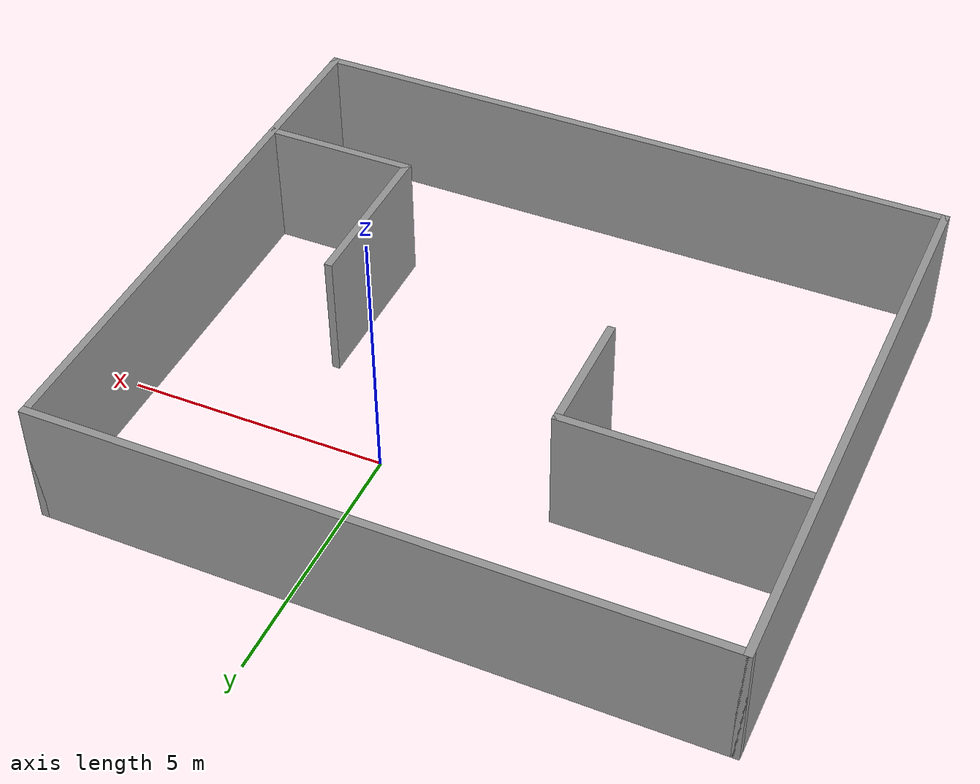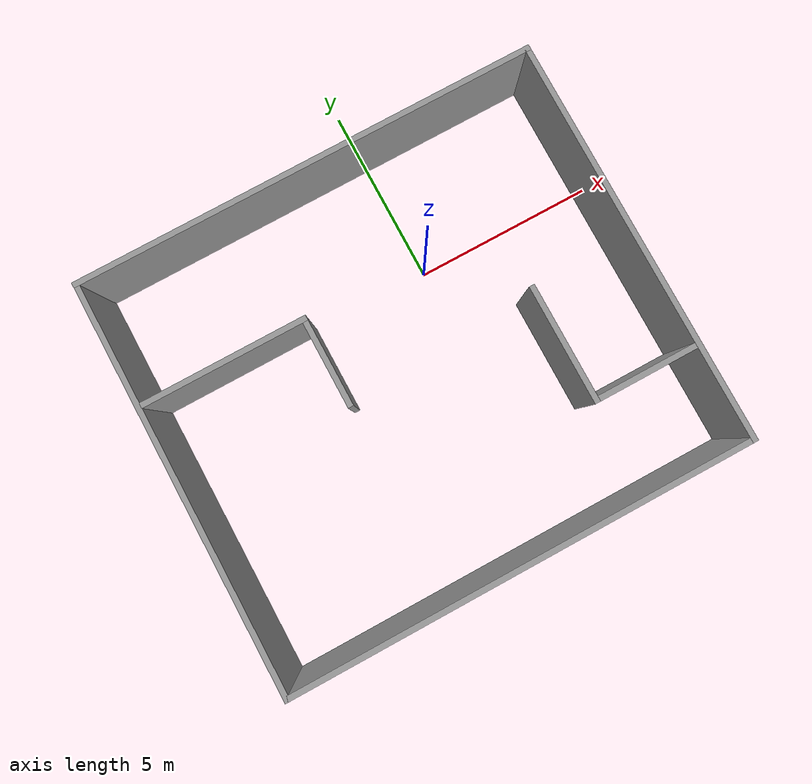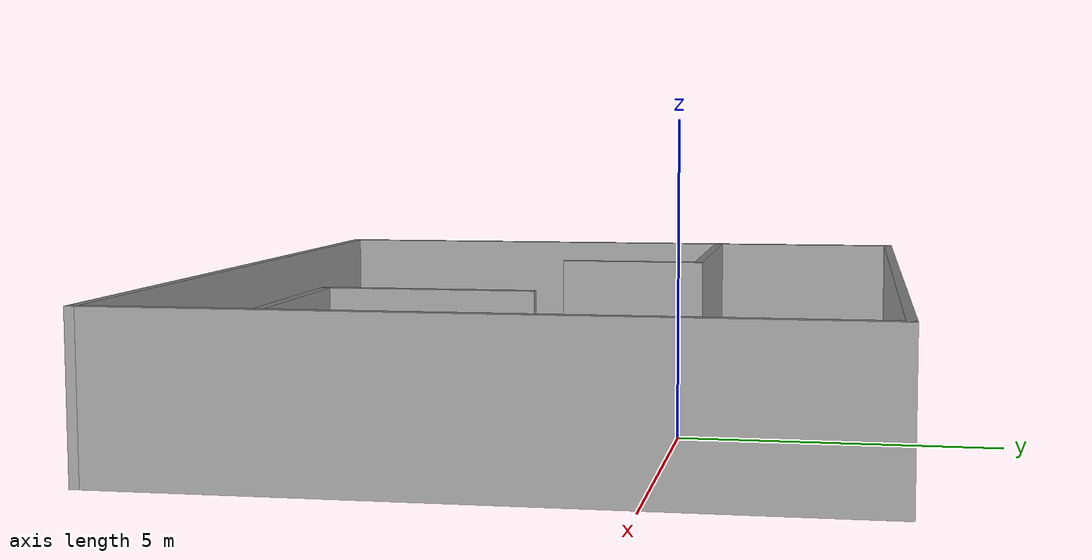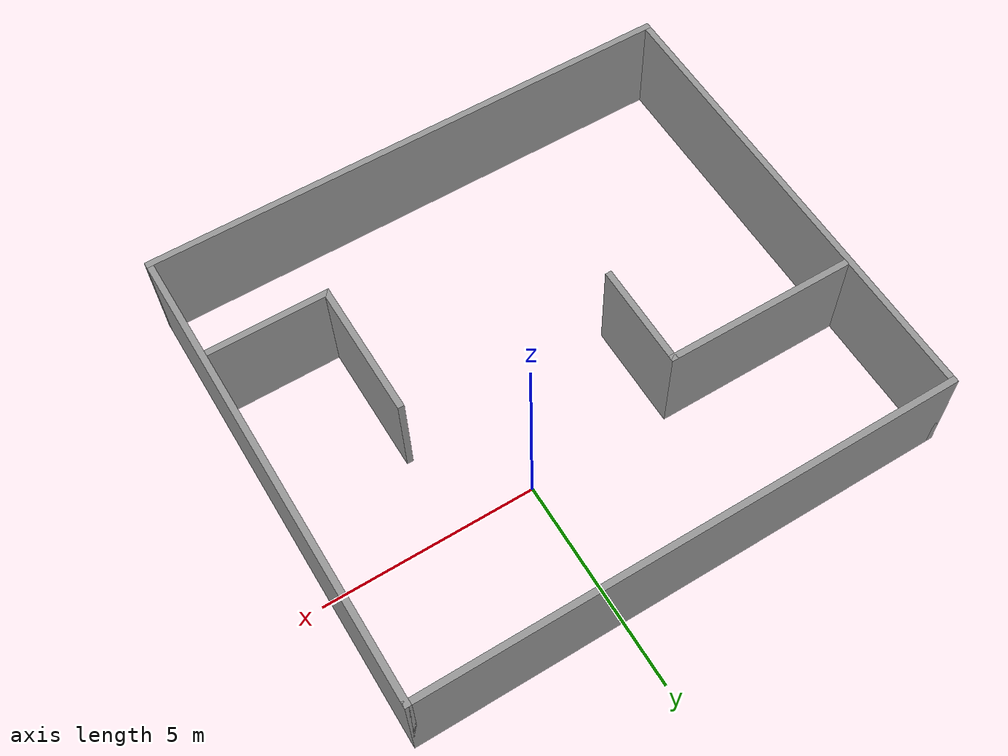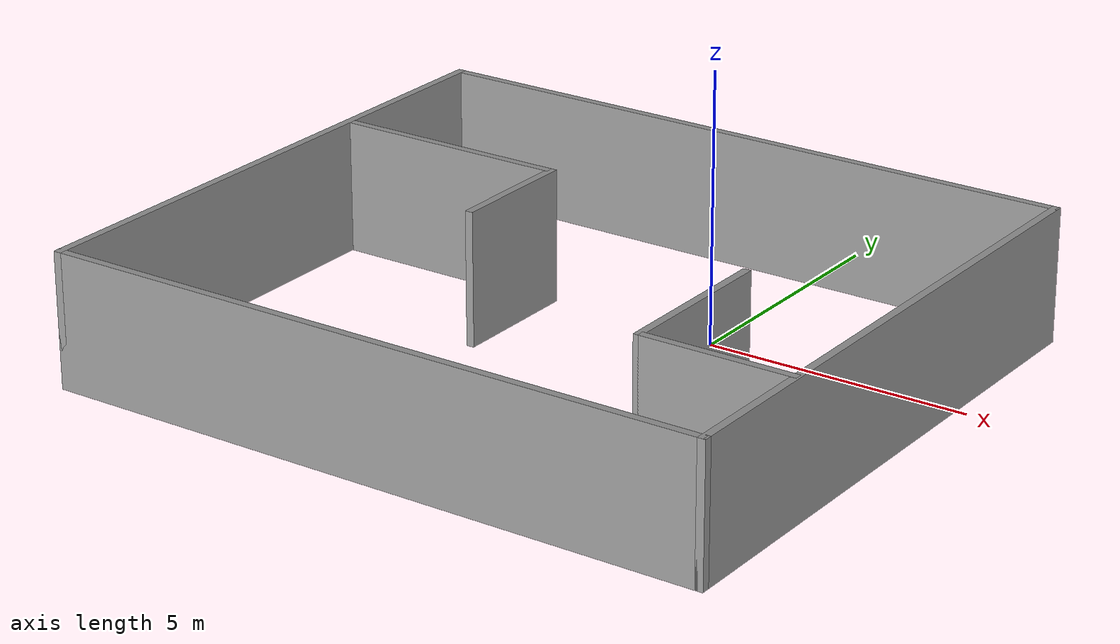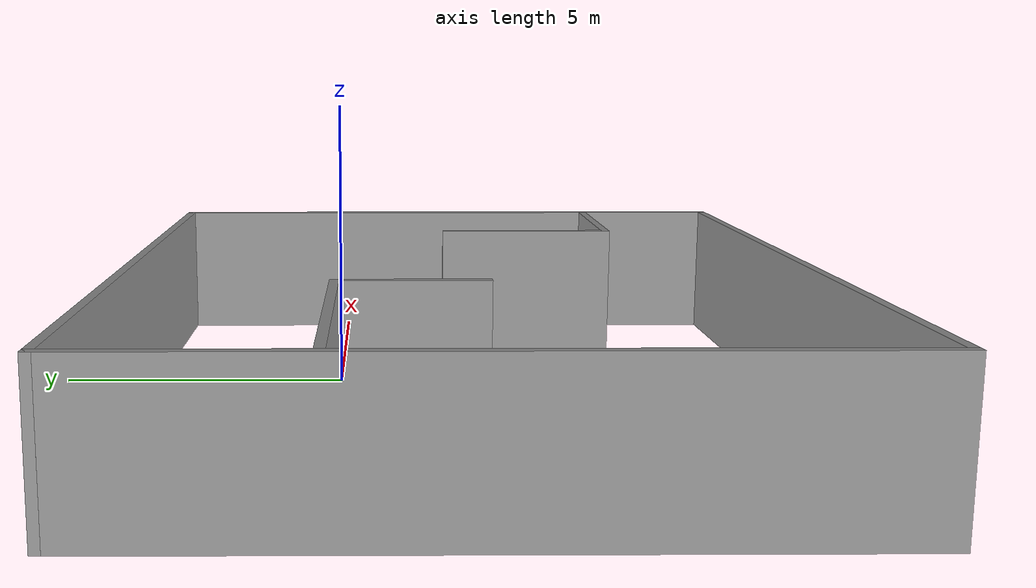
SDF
<?xml version='1.0'?>
<sdf version='1.6'>
  <model name='world1.launch'>
    <pose frame=''>-1.56 -2.15 0 0 -0 0</pose>
    <link name='Wall_10'>
      <collision name='Wall_10_Collision'>
        <geometry>
          <box>
            <size>11.25 0.15 2.5</size>
          </box>
        </geometry>
        <pose frame=''>0 0 1.25 0 -0 0</pose>
      </collision>
      <visual name='Wall_10_Visual'>
        <pose frame=''>0 0 1.25 0 -0 0</pose>
        <geometry>
          <box>
            <size>11.25 0.15 2.5</size>
          </box>
        </geometry>
        <material>
          <script>
            <uri>file://media/materials/scripts/gazebo.material</uri>
            <name>Gazebo/Grey</name>
          </script>
          <ambient>1 1 1 1</ambient>
        </material>
      </visual>
      <pose frame=''>6.3 0 0 0 0 -1.5708</pose>
    </link>
    <link name='Wall_12'>
      <collision name='Wall_12_Collision'>
        <geometry>
          <box>
            <size>4.5 0.15 2.5</size>
          </box>
        </geometry>
        <pose frame=''>0 0 1.25 0 -0 0</pose>
      </collision>
      <visual name='Wall_12_Visual'>
        <pose frame=''>0 0 1.25 0 -0 0</pose>
        <geometry>
          <box>
            <size>4.5 0.15 2.5</size>
          </box>
        </geometry>
        <material>
          <script>
            <uri>file://media/materials/scripts/gazebo.material</uri>
            <name>Gazebo/Grey</name>
          </script>
          <ambient>1 1 1 1</ambient>
        </material>
      </visual>
      <pose frame=''>-3.98502 2.14411 0 0 -0 0</pose>
    </link>
    <link name='Wall_13'>
      <collision name='Wall_13_Collision'>
        <geometry>
          <box>
            <size>2.5 0.15 2.5</size>
          </box>
        </geometry>
        <pose frame=''>0 0 1.25 0 -0 0</pose>
      </collision>
      <visual name='Wall_13_Visual'>
        <pose frame=''>0 0 1.25 0 -0 0</pose>
        <geometry>
          <box>
            <size>2.5 0.15 2.5</size>
          </box>
        </geometry>
        <material>
          <script>
            <uri>file://media/materials/scripts/gazebo.material</uri>
            <name>Gazebo/Grey</name>
          </script>
          <ambient>1 1 1 1</ambient>
        </material>
      </visual>
      <pose frame=''>-1.81002 0.969105 0 0 0 -1.5708</pose>
    </link>
    <link name='Wall_15'>
      <collision name='Wall_15_Collision'>
        <geometry>
          <box>
            <size>3.25 0.15 2.5</size>
          </box>
        </geometry>
        <pose frame=''>0 0 1.25 0 -0 0</pose>
      </collision>
      <visual name='Wall_15_Visual'>
        <pose frame=''>0 0 1.25 0 -0 0</pose>
        <geometry>
          <box>
            <size>3.25 0.15 2.5</size>
          </box>
        </geometry>
        <material>
          <script>
            <uri>file://media/materials/scripts/gazebo.material</uri>
            <name>Gazebo/Grey</name>
          </script>
          <ambient>1 1 1 1</ambient>
        </material>
      </visual>
      <pose frame=''>3.44531 -1.39426 0 0 0 -1.5708</pose>
    </link>
    <link name='Wall_16'>
      <collision name='Wall_16_Collision'>
        <geometry>
          <box>
            <size>2.92934 0.15 2.5</size>
          </box>
        </geometry>
        <pose frame=''>0 0 1.25 0 -0 0</pose>
      </collision>
      <visual name='Wall_16_Visual'>
        <pose frame=''>0 0 1.25 0 -0 0</pose>
        <geometry>
          <box>
            <size>2.92934 0.15 2.5</size>
          </box>
        </geometry>
        <material>
          <script>
            <uri>file://media/materials/scripts/gazebo.material</uri>
            <name>Gazebo/Grey</name>
          </script>
          <ambient>1 1 1 1</ambient>
        </material>
      </visual>
      <pose frame=''>4.86557 -2.94426 0 0 -0 0</pose>
    </link>
    <link name='Wall_5'>
      <collision name='Wall_5_Collision'>
        <geometry>
          <box>
            <size>11.25 0.15 2.5</size>
          </box>
        </geometry>
        <pose frame=''>0 0 1.25 0 -0 0</pose>
      </collision>
      <visual name='Wall_5_Visual'>
        <pose frame=''>0 0 1.25 0 -0 0</pose>
        <geometry>
          <box>
            <size>11.25 0.15 2.5</size>
          </box>
        </geometry>
        <material>
          <script>
            <uri>file://media/materials/scripts/gazebo.material</uri>
            <name>Gazebo/Grey</name>
          </script>
          <ambient>1 1 1 1</ambient>
        </material>
      </visual>
      <pose frame=''>-6.3 0 0 0 0 -1.5708</pose>
    </link>
    <link name='Wall_6'>
      <collision name='Wall_6_Collision'>
        <geometry>
          <box>
            <size>12.75 0.15 2.5</size>
          </box>
        </geometry>
        <pose frame=''>0 0 1.25 0 -0 0</pose>
      </collision>
      <visual name='Wall_6_Visual'>
        <pose frame=''>0 0 1.25 0 -0 0</pose>
        <geometry>
          <box>
            <size>12.75 0.15 2.5</size>
          </box>
        </geometry>
        <material>
          <script>
            <uri>file://media/materials/scripts/gazebo.material</uri>
            <name>Gazebo/Grey</name>
          </script>
          <ambient>1 1 1 1</ambient>
        </material>
      </visual>
      <pose frame=''>0 -5.55 0 0 -0 0</pose>
    </link>
    <link name='Wall_9'>
      <collision name='Wall_9_Collision'>
        <geometry>
          <box>
            <size>12.75 0.15 2.5</size>
          </box>
        </geometry>
        <pose frame=''>0 0 1.25 0 -0 0</pose>
      </collision>
      <visual name='Wall_9_Visual'>
        <pose frame=''>0 0 1.25 0 -0 0</pose>
        <geometry>
          <box>
            <size>12.75 0.15 2.5</size>
          </box>
        </geometry>
        <material>
          <script>
            <uri>file://media/materials/scripts/gazebo.material</uri>
            <name>Gazebo/Grey</name>
          </script>
          <ambient>1 1 1 1</ambient>
        </material>
      </visual>
      <pose frame=''>0 5.55 0 0 -0 0</pose>
    </link>
    <static>1</static>
  </model>
</sdf>
